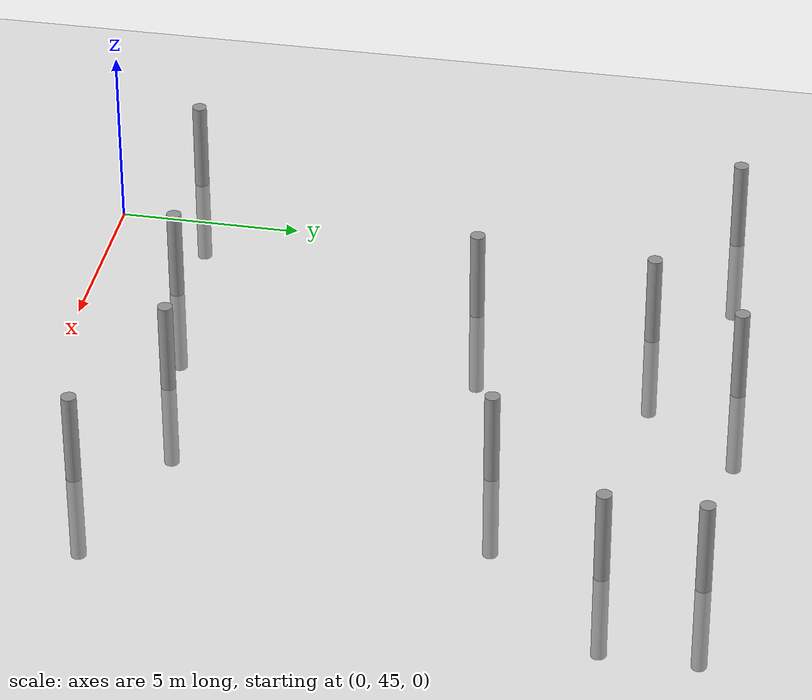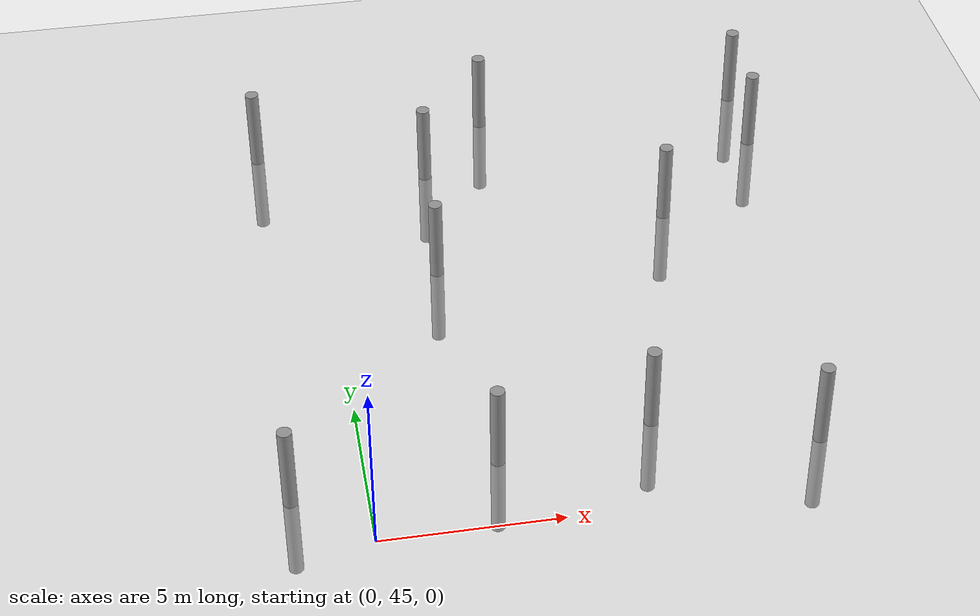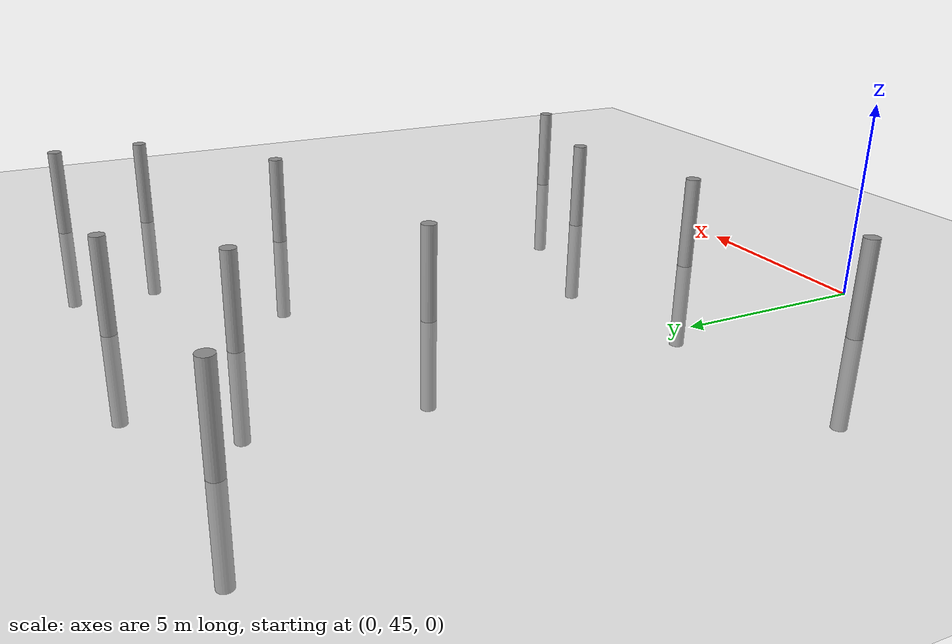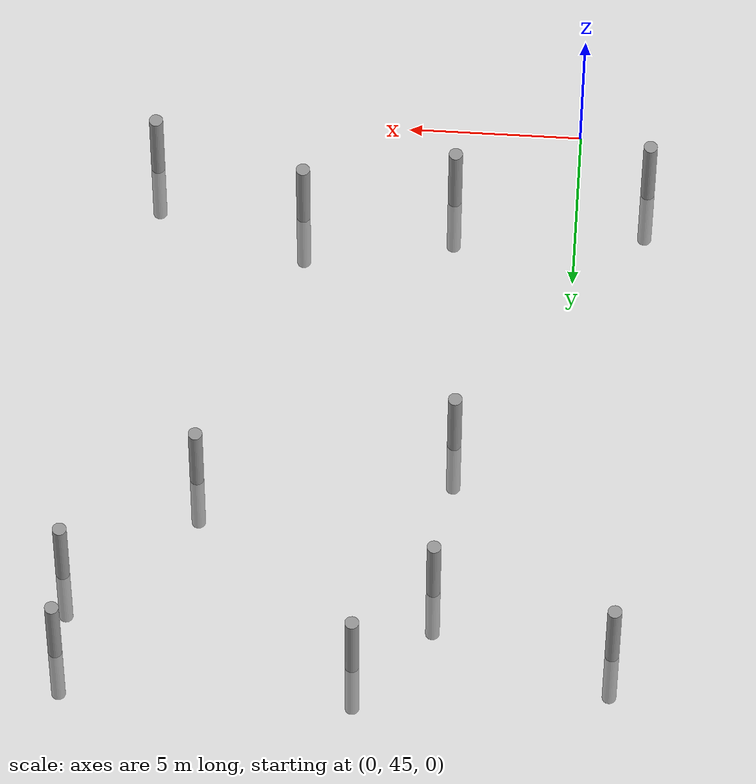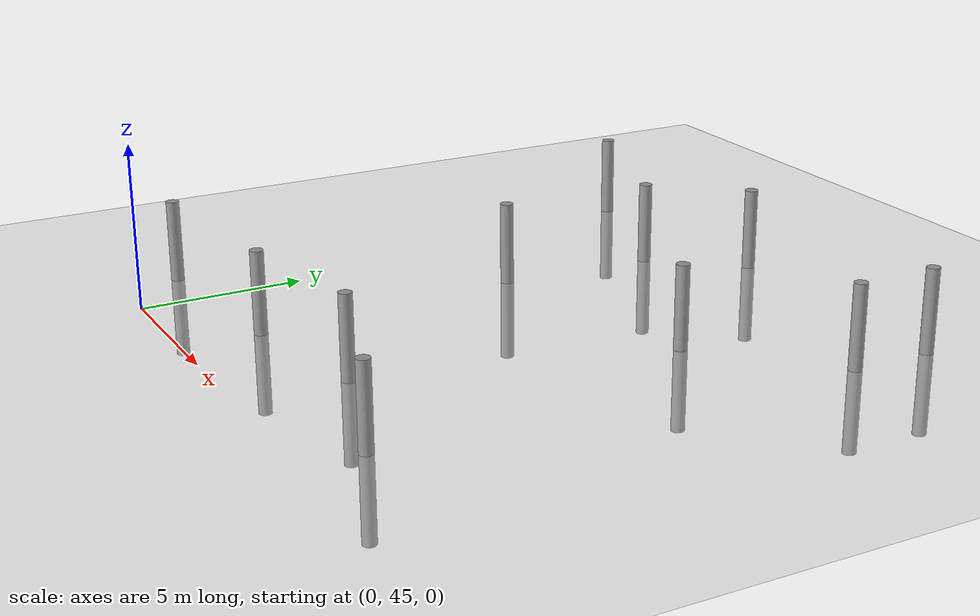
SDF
<sdf version="1.6">
 <world name="default">
  <model name="ground_plane">
   <static>1</static>
   <link name="link">
    <collision name="collision">
     <geometry><plane><normal>0 0 1</normal><size>100 100</size></plane></geometry>
     <surface><friction><ode><mu>100</mu><mu2>50</mu2></ode></friction></surface>
    </collision>
    <visual name="visual">
     <cast_shadows>0</cast_shadows>
     <geometry><plane><normal>0 0 1</normal><size>100 100</size></plane></geometry>
     <material>
      <script><uri>file://media/materials/scripts/gazebo.material</uri><name>Gazebo/Grey</name></script>
     </material>
    </visual>
   </link>
  </model>
  <model name="empty_pillars_0">
   <model name="empty_pillar_clone_54">
    <link name="link">
     <inertial>
      <mass>1</mass>
      <inertia><ixx>0.145833</ixx><ixy>0</ixy><ixz>0</ixz><iyy>0.145833</iyy><iyz>0</iyz><izz>0.125</izz></inertia>
     </inertial>
     <visual name="visual">
      <geometry><cylinder><radius>0.2</radius><length>5</length></cylinder></geometry>
      <material>
       <script><name>Gazebo/Grey</name><uri>file://media/materials/scripts/gazebo.material</uri></script>
       <shader type="vertex"><normal_map>__default__</normal_map></shader>
       <ambient>0.3 0.3 0.3 1</ambient>
       <diffuse>0.7 0.7 0.7 1</diffuse>
       <specular>0.01 0.01 0.01 1</specular>
       <emissive>0 0 0 1</emissive>
      </material>
     </visual>
     <collision name="collision">
      <geometry><cylinder><radius>0.05</radius><length>5</length></cylinder></geometry>
      <surface>
       <friction>
        <ode><mu>1</mu><mu2>1</mu2><fdir1>0 0 0</fdir1><slip1>0</slip1><slip2>0</slip2></ode>
        <torsional>
         <coefficient>1</coefficient>
         <patch_radius>0</patch_radius>
         <surface_radius>0</surface_radius>
         <use_patch_radius>1</use_patch_radius>
         <ode><slip>0</slip></ode>
        </torsional>
       </friction>
       <bounce><restitution_coefficient>0</restitution_coefficient><threshold>1e+06</threshold></bounce>
       <contact>
        <collide_without_contact>0</collide_without_contact>
        <collide_without_contact_bitmask>1</collide_without_contact_bitmask>
        <collide_bitmask>1</collide_bitmask>
        <ode>
         <soft_cfm>0</soft_cfm>
         <soft_erp>0.2</soft_erp>
         <kp>1e+13</kp>
         <kd>1</kd>
         <max_vel>0.01</max_vel>
         <min_depth>0</min_depth>
        </ode>
        <bullet>
         <split_impulse>1</split_impulse>
         <split_impulse_penetration_threshold>-0.01</split_impulse_penetration_threshold>
         <soft_cfm>0</soft_cfm>
         <soft_erp>0.2</soft_erp>
         <kp>1e+13</kp>
         <kd>1</kd>
        </bullet>
       </contact>
      </surface>
     </collision>
    </link>
    <static>0</static>
    <pose>24.557 -15.8784 0 0 -0 0</pose>
   </model>
   <static>0</static>
   <pose>-26.2243 78.0173 0 0 -0 0</pose>
  </model>
  <model name="empty_pillars_1">
   <model name="empty_pillar_clone_13">
    <link name="link">
     <inertial>
      <mass>1</mass>
      <inertia><ixx>0.145833</ixx><ixy>0</ixy><ixz>0</ixz><iyy>0.145833</iyy><iyz>0</iyz><izz>0.125</izz></inertia>
     </inertial>
     <visual name="visual">
      <geometry><cylinder><radius>0.2</radius><length>5</length></cylinder></geometry>
      <material>
       <script><name>Gazebo/Grey</name><uri>file://media/materials/scripts/gazebo.material</uri></script>
       <shader type="vertex"><normal_map>__default__</normal_map></shader>
       <ambient>0.3 0.3 0.3 1</ambient>
       <diffuse>0.7 0.7 0.7 1</diffuse>
       <specular>0.01 0.01 0.01 1</specular>
       <emissive>0 0 0 1</emissive>
      </material>
     </visual>
     <collision name="collision">
      <geometry><cylinder><radius>0.05</radius><length>5</length></cylinder></geometry>
      <surface>
       <friction>
        <ode><mu>1</mu><mu2>1</mu2><fdir1>0 0 0</fdir1><slip1>0</slip1><slip2>0</slip2></ode>
        <torsional>
         <coefficient>1</coefficient>
         <patch_radius>0</patch_radius>
         <surface_radius>0</surface_radius>
         <use_patch_radius>1</use_patch_radius>
         <ode><slip>0</slip></ode>
        </torsional>
       </friction>
       <bounce><restitution_coefficient>0</restitution_coefficient><threshold>1e+06</threshold></bounce>
       <contact>
        <collide_without_contact>0</collide_without_contact>
        <collide_without_contact_bitmask>1</collide_without_contact_bitmask>
        <collide_bitmask>1</collide_bitmask>
        <ode>
         <soft_cfm>0</soft_cfm>
         <soft_erp>0.2</soft_erp>
         <kp>1e+13</kp>
         <kd>1</kd>
         <max_vel>0.01</max_vel>
         <min_depth>0</min_depth>
        </ode>
        <bullet>
         <split_impulse>1</split_impulse>
         <split_impulse_penetration_threshold>-0.01</split_impulse_penetration_threshold>
         <soft_cfm>0</soft_cfm>
         <soft_erp>0.2</soft_erp>
         <kp>1e+13</kp>
         <kd>1</kd>
        </bullet>
       </contact>
      </surface>
     </collision>
    </link>
    <static>0</static>
    <pose>-9.01464 -14.4259 0 0 -0 0</pose>
   </model>
   <model name="empty_pillar_clone_35">
    <link name="link">
     <inertial>
      <mass>1</mass>
      <inertia><ixx>0.145833</ixx><ixy>0</ixy><ixz>0</ixz><iyy>0.145833</iyy><iyz>0</iyz><izz>0.125</izz></inertia>
     </inertial>
     <visual name="visual">
      <geometry><cylinder><radius>0.2</radius><length>5</length></cylinder></geometry>
      <material>
       <script><name>Gazebo/Grey</name><uri>file://media/materials/scripts/gazebo.material</uri></script>
       <shader type="vertex"><normal_map>__default__</normal_map></shader>
       <ambient>0.3 0.3 0.3 1</ambient>
       <diffuse>0.7 0.7 0.7 1</diffuse>
       <specular>0.01 0.01 0.01 1</specular>
       <emissive>0 0 0 1</emissive>
      </material>
     </visual>
     <collision name="collision">
      <geometry><cylinder><radius>0.05</radius><length>5</length></cylinder></geometry>
      <surface>
       <friction>
        <ode><mu>1</mu><mu2>1</mu2><fdir1>0 0 0</fdir1><slip1>0</slip1><slip2>0</slip2></ode>
        <torsional>
         <coefficient>1</coefficient>
         <patch_radius>0</patch_radius>
         <surface_radius>0</surface_radius>
         <use_patch_radius>1</use_patch_radius>
         <ode><slip>0</slip></ode>
        </torsional>
       </friction>
       <bounce><restitution_coefficient>0</restitution_coefficient><threshold>1e+06</threshold></bounce>
       <contact>
        <collide_without_contact>0</collide_without_contact>
        <collide_without_contact_bitmask>1</collide_without_contact_bitmask>
        <collide_bitmask>1</collide_bitmask>
        <ode>
         <soft_cfm>0</soft_cfm>
         <soft_erp>0.2</soft_erp>
         <kp>1e+13</kp>
         <kd>1</kd>
         <max_vel>0.01</max_vel>
         <min_depth>0</min_depth>
        </ode>
        <bullet>
         <split_impulse>1</split_impulse>
         <split_impulse_penetration_threshold>-0.01</split_impulse_penetration_threshold>
         <soft_cfm>0</soft_cfm>
         <soft_erp>0.2</soft_erp>
         <kp>1e+13</kp>
         <kd>1</kd>
        </bullet>
       </contact>
      </surface>
     </collision>
    </link>
    <static>0</static>
    <pose>-19.4431 -17.0281 0 0 -0 0</pose>
   </model>
   <model name="empty_pillar_clone_40">
    <link name="link">
     <inertial>
      <mass>1</mass>
      <inertia><ixx>0.145833</ixx><ixy>0</ixy><ixz>0</ixz><iyy>0.145833</iyy><iyz>0</iyz><izz>0.125</izz></inertia>
     </inertial>
     <visual name="visual">
      <geometry><cylinder><radius>0.2</radius><length>5</length></cylinder></geometry>
      <material>
       <script><name>Gazebo/Grey</name><uri>file://media/materials/scripts/gazebo.material</uri></script>
       <shader type="vertex"><normal_map>__default__</normal_map></shader>
       <ambient>0.3 0.3 0.3 1</ambient>
       <diffuse>0.7 0.7 0.7 1</diffuse>
       <specular>0.01 0.01 0.01 1</specular>
       <emissive>0 0 0 1</emissive>
      </material>
     </visual>
     <collision name="collision">
      <geometry><cylinder><radius>0.05</radius><length>5</length></cylinder></geometry>
      <surface>
       <friction>
        <ode><mu>1</mu><mu2>1</mu2><fdir1>0 0 0</fdir1><slip1>0</slip1><slip2>0</slip2></ode>
        <torsional>
         <coefficient>1</coefficient>
         <patch_radius>0</patch_radius>
         <surface_radius>0</surface_radius>
         <use_patch_radius>1</use_patch_radius>
         <ode><slip>0</slip></ode>
        </torsional>
       </friction>
       <bounce><restitution_coefficient>0</restitution_coefficient><threshold>1e+06</threshold></bounce>
       <contact>
        <collide_without_contact>0</collide_without_contact>
        <collide_without_contact_bitmask>1</collide_without_contact_bitmask>
        <collide_bitmask>1</collide_bitmask>
        <ode>
         <soft_cfm>0</soft_cfm>
         <soft_erp>0.2</soft_erp>
         <kp>1e+13</kp>
         <kd>1</kd>
         <max_vel>0.01</max_vel>
         <min_depth>0</min_depth>
        </ode>
        <bullet>
         <split_impulse>1</split_impulse>
         <split_impulse_penetration_threshold>-0.01</split_impulse_penetration_threshold>
         <soft_cfm>0</soft_cfm>
         <soft_erp>0.2</soft_erp>
         <kp>1e+13</kp>
         <kd>1</kd>
        </bullet>
       </contact>
      </surface>
     </collision>
    </link>
    <static>0</static>
    <pose>-17.318 -14.4851 0 0 -0 0</pose>
   </model>
   <model name="empty_pillar_clone_42">
    <link name="link">
     <inertial>
      <mass>1</mass>
      <inertia><ixx>0.145833</ixx><ixy>0</ixy><ixz>0</ixz><iyy>0.145833</iyy><iyz>0</iyz><izz>0.125</izz></inertia>
     </inertial>
     <visual name="visual">
      <geometry><cylinder><radius>0.2</radius><length>5</length></cylinder></geometry>
      <material>
       <script><name>Gazebo/Grey</name><uri>file://media/materials/scripts/gazebo.material</uri></script>
       <shader type="vertex"><normal_map>__default__</normal_map></shader>
       <ambient>0.3 0.3 0.3 1</ambient>
       <diffuse>0.7 0.7 0.7 1</diffuse>
       <specular>0.01 0.01 0.01 1</specular>
       <emissive>0 0 0 1</emissive>
      </material>
     </visual>
     <collision name="collision">
      <geometry><cylinder><radius>0.05</radius><length>5</length></cylinder></geometry>
      <surface>
       <friction>
        <ode><mu>1</mu><mu2>1</mu2><fdir1>0 0 0</fdir1><slip1>0</slip1><slip2>0</slip2></ode>
        <torsional>
         <coefficient>1</coefficient>
         <patch_radius>0</patch_radius>
         <surface_radius>0</surface_radius>
         <use_patch_radius>1</use_patch_radius>
         <ode><slip>0</slip></ode>
        </torsional>
       </friction>
       <bounce><restitution_coefficient>0</restitution_coefficient><threshold>1e+06</threshold></bounce>
       <contact>
        <collide_without_contact>0</collide_without_contact>
        <collide_without_contact_bitmask>1</collide_without_contact_bitmask>
        <collide_bitmask>1</collide_bitmask>
        <ode>
         <soft_cfm>0</soft_cfm>
         <soft_erp>0.2</soft_erp>
         <kp>1e+13</kp>
         <kd>1</kd>
         <max_vel>0.01</max_vel>
         <min_depth>0</min_depth>
        </ode>
        <bullet>
         <split_impulse>1</split_impulse>
         <split_impulse_penetration_threshold>-0.01</split_impulse_penetration_threshold>
         <soft_cfm>0</soft_cfm>
         <soft_erp>0.2</soft_erp>
         <kp>1e+13</kp>
         <kd>1</kd>
        </bullet>
       </contact>
      </surface>
     </collision>
    </link>
    <static>0</static>
    <pose>-12.5409 -20.2416 0 0 -0 0</pose>
   </model>
   <model name="empty_pillar_clone_43">
    <link name="link">
     <inertial>
      <mass>1</mass>
      <inertia><ixx>0.145833</ixx><ixy>0</ixy><ixz>0</ixz><iyy>0.145833</iyy><iyz>0</iyz><izz>0.125</izz></inertia>
     </inertial>
     <visual name="visual">
      <geometry><cylinder><radius>0.2</radius><length>5</length></cylinder></geometry>
      <material>
       <script><name>Gazebo/Grey</name><uri>file://media/materials/scripts/gazebo.material</uri></script>
       <shader type="vertex"><normal_map>__default__</normal_map></shader>
       <ambient>0.3 0.3 0.3 1</ambient>
       <diffuse>0.7 0.7 0.7 1</diffuse>
       <specular>0.01 0.01 0.01 1</specular>
       <emissive>0 0 0 1</emissive>
      </material>
     </visual>
     <collision name="collision">
      <geometry><cylinder><radius>0.05</radius><length>5</length></cylinder></geometry>
      <surface>
       <friction>
        <ode><mu>1</mu><mu2>1</mu2><fdir1>0 0 0</fdir1><slip1>0</slip1><slip2>0</slip2></ode>
        <torsional>
         <coefficient>1</coefficient>
         <patch_radius>0</patch_radius>
         <surface_radius>0</surface_radius>
         <use_patch_radius>1</use_patch_radius>
         <ode><slip>0</slip></ode>
        </torsional>
       </friction>
       <bounce><restitution_coefficient>0</restitution_coefficient><threshold>1e+06</threshold></bounce>
       <contact>
        <collide_without_contact>0</collide_without_contact>
        <collide_without_contact_bitmask>1</collide_without_contact_bitmask>
        <collide_bitmask>1</collide_bitmask>
        <ode>
         <soft_cfm>0</soft_cfm>
         <soft_erp>0.2</soft_erp>
         <kp>1e+13</kp>
         <kd>1</kd>
         <max_vel>0.01</max_vel>
         <min_depth>0</min_depth>
        </ode>
        <bullet>
         <split_impulse>1</split_impulse>
         <split_impulse_penetration_threshold>-0.01</split_impulse_penetration_threshold>
         <soft_cfm>0</soft_cfm>
         <soft_erp>0.2</soft_erp>
         <kp>1e+13</kp>
         <kd>1</kd>
        </bullet>
       </contact>
      </surface>
     </collision>
    </link>
    <static>0</static>
    <pose>-19.7613 -21.8307 0 0 -0 0</pose>
   </model>
   <model name="empty_pillar_clone_45">
    <link name="link">
     <inertial>
      <mass>1</mass>
      <inertia><ixx>0.145833</ixx><ixy>0</ixy><ixz>0</ixz><iyy>0.145833</iyy><iyz>0</iyz><izz>0.125</izz></inertia>
     </inertial>
     <visual name="visual">
      <geometry><cylinder><radius>0.2</radius><length>5</length></cylinder></geometry>
      <material>
       <script><name>Gazebo/Grey</name><uri>file://media/materials/scripts/gazebo.material</uri></script>
       <shader type="vertex"><normal_map>__default__</normal_map></shader>
       <ambient>0.3 0.3 0.3 1</ambient>
       <diffuse>0.7 0.7 0.7 1</diffuse>
       <specular>0.01 0.01 0.01 1</specular>
       <emissive>0 0 0 1</emissive>
      </material>
     </visual>
     <collision name="collision">
      <geometry><cylinder><radius>0.05</radius><length>5</length></cylinder></geometry>
      <surface>
       <friction>
        <ode><mu>1</mu><mu2>1</mu2><fdir1>0 0 0</fdir1><slip1>0</slip1><slip2>0</slip2></ode>
        <torsional>
         <coefficient>1</coefficient>
         <patch_radius>0</patch_radius>
         <surface_radius>0</surface_radius>
         <use_patch_radius>1</use_patch_radius>
         <ode><slip>0</slip></ode>
        </torsional>
       </friction>
       <bounce><restitution_coefficient>0</restitution_coefficient><threshold>1e+06</threshold></bounce>
       <contact>
        <collide_without_contact>0</collide_without_contact>
        <collide_without_contact_bitmask>1</collide_without_contact_bitmask>
        <collide_bitmask>1</collide_bitmask>
        <ode>
         <soft_cfm>0</soft_cfm>
         <soft_erp>0.2</soft_erp>
         <kp>1e+13</kp>
         <kd>1</kd>
         <max_vel>0.01</max_vel>
         <min_depth>0</min_depth>
        </ode>
        <bullet>
         <split_impulse>1</split_impulse>
         <split_impulse_penetration_threshold>-0.01</split_impulse_penetration_threshold>
         <soft_cfm>0</soft_cfm>
         <soft_erp>0.2</soft_erp>
         <kp>1e+13</kp>
         <kd>1</kd>
        </bullet>
       </contact>
      </surface>
     </collision>
    </link>
    <static>0</static>
    <pose>-9.01076 -16.9307 0 0 -0 0</pose>
   </model>
   <static>0</static>
   <pose>22.8728 77.4317 0 0 -0 0</pose>
  </model>
  <model name="empty_pillars_4">
   <model name="empty_pillar_clone_20">
    <link name="link">
     <inertial>
      <mass>1</mass>
      <inertia><ixx>0.145833</ixx><ixy>0</ixy><ixz>0</ixz><iyy>0.145833</iyy><iyz>0</iyz><izz>0.125</izz></inertia>
     </inertial>
     <visual name="visual">
      <geometry><cylinder><radius>0.2</radius><length>5</length></cylinder></geometry>
      <material>
       <script><name>Gazebo/Grey</name><uri>file://media/materials/scripts/gazebo.material</uri></script>
       <shader type="vertex"><normal_map>__default__</normal_map></shader>
       <ambient>0.3 0.3 0.3 1</ambient>
       <diffuse>0.7 0.7 0.7 1</diffuse>
       <specular>0.01 0.01 0.01 1</specular>
       <emissive>0 0 0 1</emissive>
      </material>
     </visual>
     <collision name="collision">
      <geometry><cylinder><radius>0.05</radius><length>5</length></cylinder></geometry>
      <surface>
       <friction>
        <ode><mu>1</mu><mu2>1</mu2><fdir1>0 0 0</fdir1><slip1>0</slip1><slip2>0</slip2></ode>
        <torsional>
         <coefficient>1</coefficient>
         <patch_radius>0</patch_radius>
         <surface_radius>0</surface_radius>
         <use_patch_radius>1</use_patch_radius>
         <ode><slip>0</slip></ode>
        </torsional>
       </friction>
       <bounce><restitution_coefficient>0</restitution_coefficient><threshold>1e+06</threshold></bounce>
       <contact>
        <collide_without_contact>0</collide_without_contact>
        <collide_without_contact_bitmask>1</collide_without_contact_bitmask>
        <collide_bitmask>1</collide_bitmask>
        <ode>
         <soft_cfm>0</soft_cfm>
         <soft_erp>0.2</soft_erp>
         <kp>1e+13</kp>
         <kd>1</kd>
         <max_vel>0.01</max_vel>
         <min_depth>0</min_depth>
        </ode>
        <bullet>
         <split_impulse>1</split_impulse>
         <split_impulse_penetration_threshold>-0.01</split_impulse_penetration_threshold>
         <soft_cfm>0</soft_cfm>
         <soft_erp>0.2</soft_erp>
         <kp>1e+13</kp>
         <kd>1</kd>
        </bullet>
       </contact>
      </surface>
     </collision>
    </link>
    <static>0</static>
    <pose>-13.0146 19.1597 0 0 -0 0</pose>
   </model>
   <model name="empty_pillar_clone_21">
    <link name="link">
     <inertial>
      <mass>1</mass>
      <inertia><ixx>0.145833</ixx><ixy>0</ixy><ixz>0</ixz><iyy>0.145833</iyy><iyz>0</iyz><izz>0.125</izz></inertia>
     </inertial>
     <visual name="visual">
      <geometry><cylinder><radius>0.2</radius><length>5</length></cylinder></geometry>
      <material>
       <script><name>Gazebo/Grey</name><uri>file://media/materials/scripts/gazebo.material</uri></script>
       <shader type="vertex"><normal_map>__default__</normal_map></shader>
       <ambient>0.3 0.3 0.3 1</ambient>
       <diffuse>0.7 0.7 0.7 1</diffuse>
       <specular>0.01 0.01 0.01 1</specular>
       <emissive>0 0 0 1</emissive>
      </material>
     </visual>
     <collision name="collision">
      <geometry><cylinder><radius>0.05</radius><length>5</length></cylinder></geometry>
      <surface>
       <friction>
        <ode><mu>1</mu><mu2>1</mu2><fdir1>0 0 0</fdir1><slip1>0</slip1><slip2>0</slip2></ode>
        <torsional>
         <coefficient>1</coefficient>
         <patch_radius>0</patch_radius>
         <surface_radius>0</surface_radius>
         <use_patch_radius>1</use_patch_radius>
         <ode><slip>0</slip></ode>
        </torsional>
       </friction>
       <bounce><restitution_coefficient>0</restitution_coefficient><threshold>1e+06</threshold></bounce>
       <contact>
        <collide_without_contact>0</collide_without_contact>
        <collide_without_contact_bitmask>1</collide_without_contact_bitmask>
        <collide_bitmask>1</collide_bitmask>
        <ode>
         <soft_cfm>0</soft_cfm>
         <soft_erp>0.2</soft_erp>
         <kp>1e+13</kp>
         <kd>1</kd>
         <max_vel>0.01</max_vel>
         <min_depth>0</min_depth>
        </ode>
        <bullet>
         <split_impulse>1</split_impulse>
         <split_impulse_penetration_threshold>-0.01</split_impulse_penetration_threshold>
         <soft_cfm>0</soft_cfm>
         <soft_erp>0.2</soft_erp>
         <kp>1e+13</kp>
         <kd>1</kd>
        </bullet>
       </contact>
      </surface>
     </collision>
    </link>
    <static>0</static>
    <pose>-21.7273 19.7662 0 0 -0 0</pose>
   </model>
   <model name="empty_pillar_clone_22">
    <link name="link">
     <inertial>
      <mass>1</mass>
      <inertia><ixx>0.145833</ixx><ixy>0</ixy><ixz>0</ixz><iyy>0.145833</iyy><iyz>0</iyz><izz>0.125</izz></inertia>
     </inertial>
     <visual name="visual">
      <geometry><cylinder><radius>0.2</radius><length>5</length></cylinder></geometry>
      <material>
       <script><name>Gazebo/Grey</name><uri>file://media/materials/scripts/gazebo.material</uri></script>
       <shader type="vertex"><normal_map>__default__</normal_map></shader>
       <ambient>0.3 0.3 0.3 1</ambient>
       <diffuse>0.7 0.7 0.7 1</diffuse>
       <specular>0.01 0.01 0.01 1</specular>
       <emissive>0 0 0 1</emissive>
      </material>
     </visual>
     <collision name="collision">
      <geometry><cylinder><radius>0.05</radius><length>5</length></cylinder></geometry>
      <surface>
       <friction>
        <ode><mu>1</mu><mu2>1</mu2><fdir1>0 0 0</fdir1><slip1>0</slip1><slip2>0</slip2></ode>
        <torsional>
         <coefficient>1</coefficient>
         <patch_radius>0</patch_radius>
         <surface_radius>0</surface_radius>
         <use_patch_radius>1</use_patch_radius>
         <ode><slip>0</slip></ode>
        </torsional>
       </friction>
       <bounce><restitution_coefficient>0</restitution_coefficient><threshold>1e+06</threshold></bounce>
       <contact>
        <collide_without_contact>0</collide_without_contact>
        <collide_without_contact_bitmask>1</collide_without_contact_bitmask>
        <collide_bitmask>1</collide_bitmask>
        <ode>
         <soft_cfm>0</soft_cfm>
         <soft_erp>0.2</soft_erp>
         <kp>1e+13</kp>
         <kd>1</kd>
         <max_vel>0.01</max_vel>
         <min_depth>0</min_depth>
        </ode>
        <bullet>
         <split_impulse>1</split_impulse>
         <split_impulse_penetration_threshold>-0.01</split_impulse_penetration_threshold>
         <soft_cfm>0</soft_cfm>
         <soft_erp>0.2</soft_erp>
         <kp>1e+13</kp>
         <kd>1</kd>
        </bullet>
       </contact>
      </surface>
     </collision>
    </link>
    <static>0</static>
    <pose>-17.3667 20.5782 0 0 -0 0</pose>
   </model>
   <static>0</static>
   <pose>25.2837 27.6164 0 0 -0 0</pose>
  </model>
  <model name="empty_pillars_5">
   <model name="empty_pillar_clone_30">
    <link name="link">
     <inertial>
      <mass>1</mass>
      <inertia><ixx>0.145833</ixx><ixy>0</ixy><ixz>0</ixz><iyy>0.145833</iyy><iyz>0</iyz><izz>0.125</izz></inertia>
     </inertial>
     <visual name="visual">
      <geometry><cylinder><radius>0.2</radius><length>5</length></cylinder></geometry>
      <material>
       <script><name>Gazebo/Grey</name><uri>file://media/materials/scripts/gazebo.material</uri></script>
       <shader type="vertex"><normal_map>__default__</normal_map></shader>
       <ambient>0.3 0.3 0.3 1</ambient>
       <diffuse>0.7 0.7 0.7 1</diffuse>
       <specular>0.01 0.01 0.01 1</specular>
       <emissive>0 0 0 1</emissive>
      </material>
     </visual>
     <collision name="collision">
      <geometry><cylinder><radius>0.05</radius><length>5</length></cylinder></geometry>
      <surface>
       <friction>
        <ode><mu>1</mu><mu2>1</mu2><fdir1>0 0 0</fdir1><slip1>0</slip1><slip2>0</slip2></ode>
        <torsional>
         <coefficient>1</coefficient>
         <patch_radius>0</patch_radius>
         <surface_radius>0</surface_radius>
         <use_patch_radius>1</use_patch_radius>
         <ode><slip>0</slip></ode>
        </torsional>
       </friction>
       <bounce><restitution_coefficient>0</restitution_coefficient><threshold>1e+06</threshold></bounce>
       <contact>
        <collide_without_contact>0</collide_without_contact>
        <collide_without_contact_bitmask>1</collide_without_contact_bitmask>
        <collide_bitmask>1</collide_bitmask>
        <ode>
         <soft_cfm>0</soft_cfm>
         <soft_erp>0.2</soft_erp>
         <kp>1e+13</kp>
         <kd>1</kd>
         <max_vel>0.01</max_vel>
         <min_depth>0</min_depth>
        </ode>
        <bullet>
         <split_impulse>1</split_impulse>
         <split_impulse_penetration_threshold>-0.01</split_impulse_penetration_threshold>
         <soft_cfm>0</soft_cfm>
         <soft_erp>0.2</soft_erp>
         <kp>1e+13</kp>
         <kd>1</kd>
        </bullet>
       </contact>
      </surface>
     </collision>
    </link>
    <static>0</static>
    <pose>23.752 19.2231 0 0 -0 0</pose>
   </model>
   <static>0</static>
   <pose>-25.786 27.5577 0 0 -0 0</pose>
  </model>
 </world>
</sdf>
